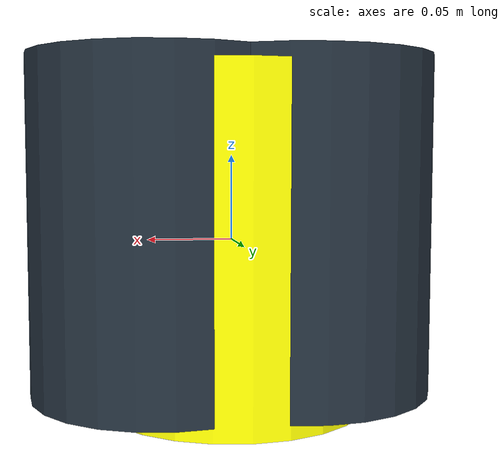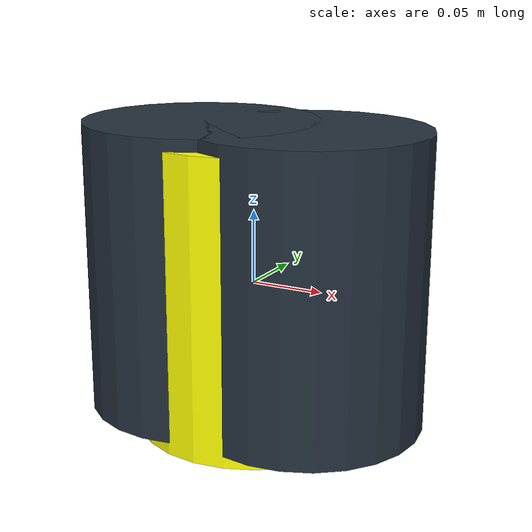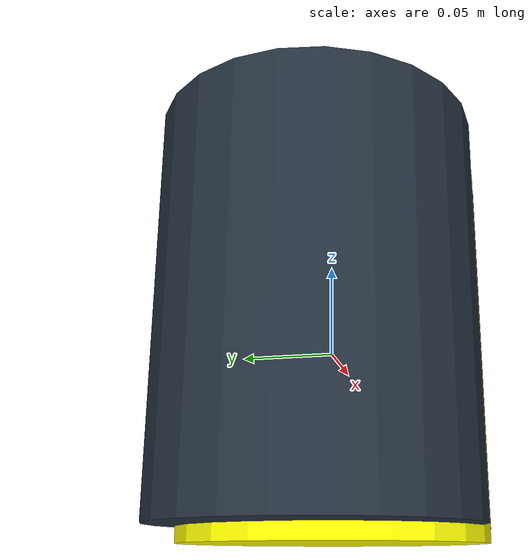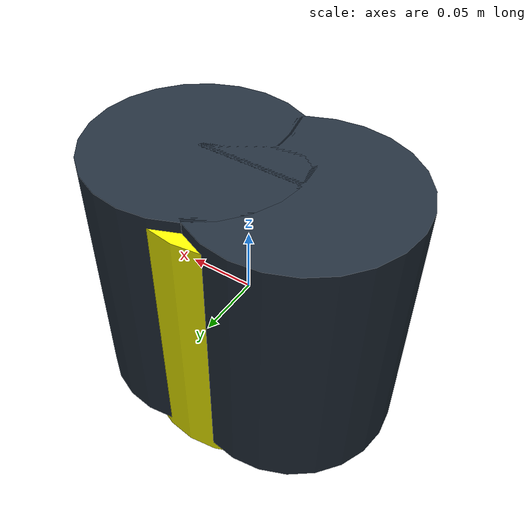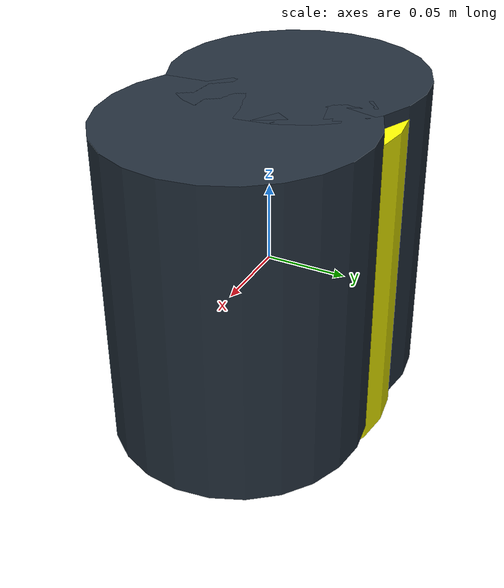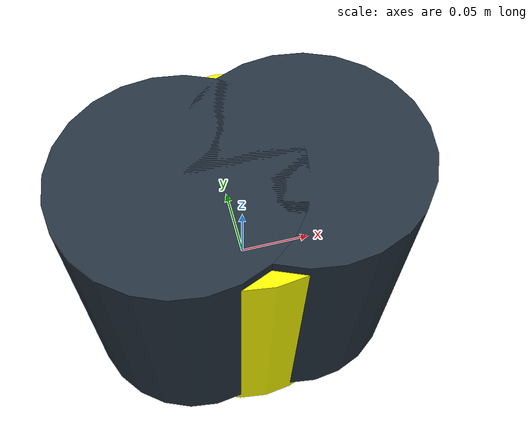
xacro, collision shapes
<?xml version="1.0"?>
<robot xmlns:xacro="http://www.ros.org/wiki/xacro">

    <xacro:arg name="link1_x" default="0.038"/>
    <xacro:arg name="link1_y" default="0"/>
    <xacro:arg name="link1_z" default="0.038"/>
    <xacro:arg name="link1_joint_x" default="0.04"/>
    <xacro:arg name="link1_joint_z" default="0.008"/>

    <link name="gripper_link_base">
        <inertial>
            <mass value="3.635"/>
            <origin xyz="4e-06   -0.001     0.082"/>
            <inertia ixx="0.02216" ixy="5.8e-06" ixz="6.2e-06" iyy="0.02"
                iyz="-5.3e-05"
                izz="0.02"/>
        </inertial>
        <collision>
            <geometry>
                <cylinder radius="0.08" length="0.2"/>
            </geometry>
            </collision>
        <visual>
            <origin rpy="1.571 0 0" xyz="0 0 0" />
            <geometry>
                <mesh filename="file:///$(find doosan_description)/description/meshes/gripper/gripA_0.stl"
                    scale="0.004 0.004 0.004" />
            </geometry>
            <material name="gray">
                <color rgba="1 1 0 1"/>
            </material>
        </visual>
    </link>

    <link name="gripper_link_left_1">
        <inertial>
            <mass value="3.635"/>
            <origin xyz="4e-06   -0.001     0.082"/>
            <inertia ixx="0.02216" ixy="5.8e-06" ixz="6.2e-06" iyy="0.02"
                iyz="-5.3e-05"
                izz="0.02"/>
        </inertial>
        <collision>
            <geometry>
                <cylinder radius="0.08" length="0.2"/>
            </geometry>
            </collision>
        <visual>
            <origin rpy="1.571 0 0" xyz="-$(arg link1_x) $(arg link1_y) $(arg link1_z)" />
            <!-- origin rpy="1.571 0 0" xyz="-0.036 0 0.038" /-->
            <geometry>
                <mesh filename="file:///$(find doosan_description)/description/meshes/gripper/gripA_L_1.stl"
                    scale="0.004 0.004 0.004" />
            </geometry>
            <material name="blue">
                <color rgba="0.1384 0.188 0.2384 1"/>
            </material>
        </visual>

    </link>

    <joint name="gripper_joint_left_1" type="prismatic">
        <parent link="gripper_link_base" />
        <child link="gripper_link_left_1" />
        <origin rpy="0 0 0" xyz="-$(arg link1_joint_x) $(arg link1_y) $(arg link1_joint_z)" />
        <!-- origin rpy="0 0 0" xyz="-0.036 0 -0.04" / -->
        <axis xyz="1 0 0" />
        <limit effort="411" lower="-0.04" upper="0.06" velocity="0.05"/>
        <dynamics damping="60.0" friction="4.0" />
    </joint>

    <link name="gripper_link_right_1">
        <inertial>
            <mass value="3.635"/>
            <origin xyz="4e-06   -0.001     0.082"/>
            <inertia ixx="0.02216" ixy="5.8e-06" ixz="6.2e-06" iyy="0.02"
                iyz="-5.3e-05"
                izz="0.02"/>
        </inertial>
        <collision>
            <geometry>
                <cylinder radius="0.08" length="0.2"/>
            </geometry>
            </collision>
        <visual>
            <origin rpy="1.571 0 0" xyz="$(arg link1_x) $(arg link1_y) $(arg link1_z)" />
            <!-- origin rpy="1.571 0 0" xyz="-0.036 0 0.038" /-->
            <geometry>
                <mesh filename="file:///$(find doosan_description)/description/meshes/gripper/gripA_R_1.stl"
                    scale="0.004 0.004 0.004" />
            </geometry>
            <material name="blue">
                <color rgba="0.1384 0.188 0.2384 1"/>
            </material>
        </visual>

    </link>

    <joint name="gripper_joint_right_1" type="prismatic">
        <parent link="gripper_link_base" />
        <child link="gripper_link_right_1" />
        <origin rpy="0 0 0" xyz="$(arg link1_joint_x) $(arg link1_y) $(arg link1_joint_z)" />
        <!-- origin rpy="0 0 0" xyz="-0.036 0 -0.04" / -->
        <axis xyz="1 0 0" />
        <limit effort="411" lower="-0.06" upper="0.04" velocity="0.05"/>
        <dynamics damping="60.0" friction="4.0" />

        <!-- Mimic the movement of gripper_joint_left_1 -->

    </joint>

    <!-- End Effector -->
    <link name="gripper_link_ee" />

    <joint name="gripper_fixed_ee" type="fixed">
      <origin xyz="0 0 0.08" rpy="0 0 0"/>
      <parent link="gripper_link_base"/>
      <child link="gripper_link_ee"/>
   </joint>

    <!-- Gazebo colors -->

</robot>
